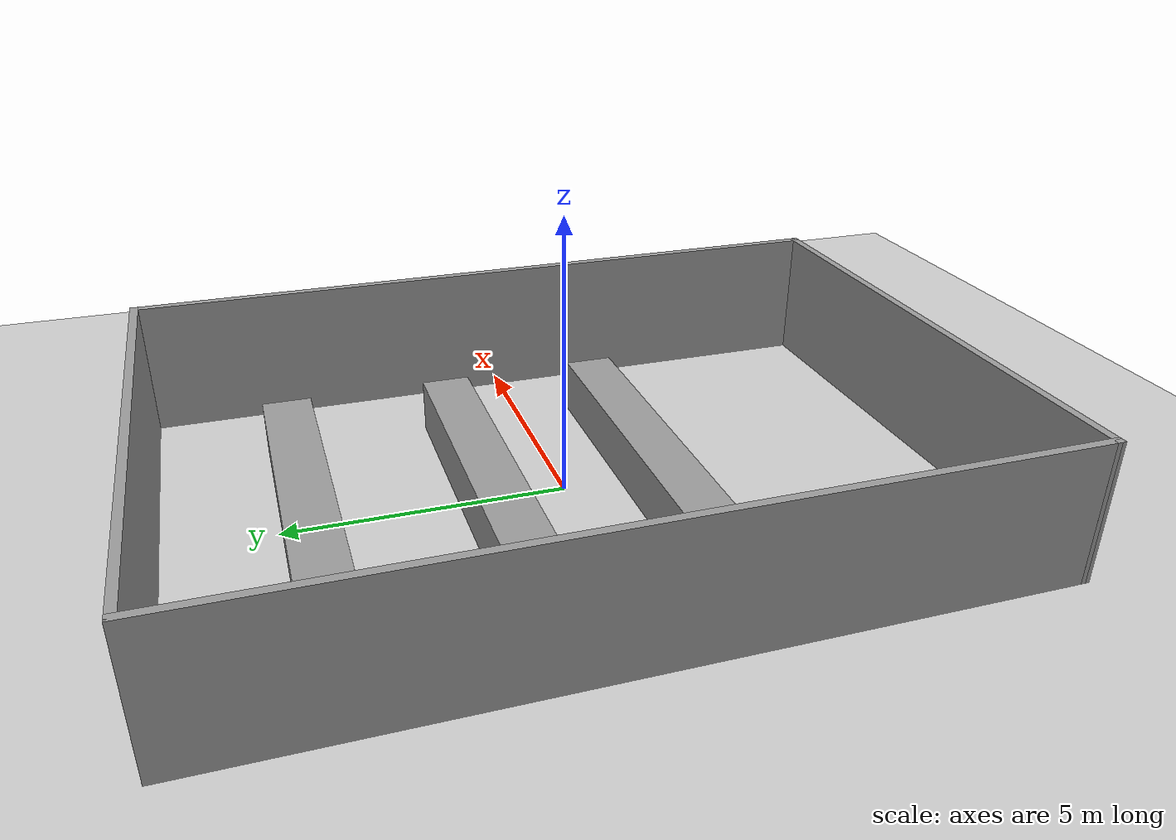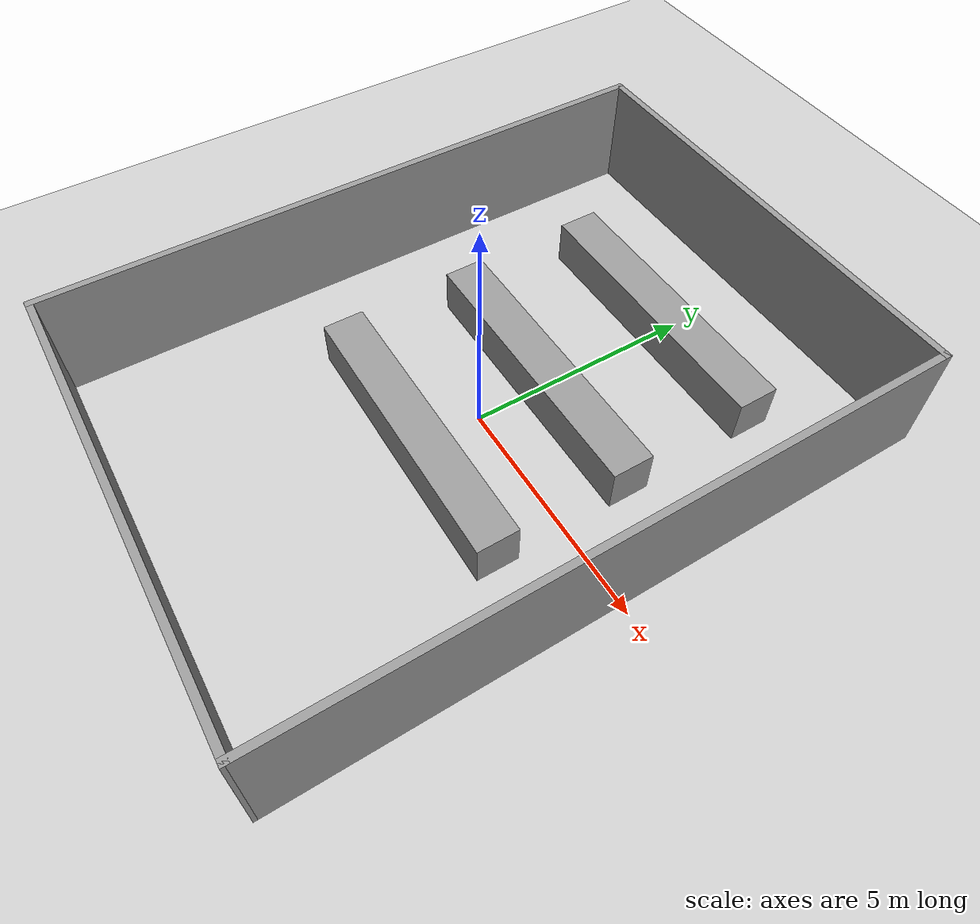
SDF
<sdf version="1.7">
 <world name="turtlebot3_supermarket">
  <light name="sun" type="directional">
   <pose>0 0 10 0 -0 0</pose>
   <diffuse>0.8 0.8 0.8 1</diffuse>
   <specular>0.2 0.2 0.2 1</specular>
   <attenuation>
    <range>1000</range>
    <constant>0.9</constant>
    <linear>0.01</linear>
    <quadratic>0.001</quadratic>
   </attenuation>
   <direction>-0.5 0.1 -0.9</direction>
   <spot><inner_angle>0</inner_angle><outer_angle>0</outer_angle><falloff>0</falloff></spot>
  </light>
  <model name="ground_plane">
   <static>1</static>
   <link name="link">
    <collision name="collision">
     <geometry><plane><normal>0 0 1</normal><size>100 100</size></plane></geometry>
     <surface>
      <contact><collide_bitmask>65535</collide_bitmask></contact>
      <friction><ode><mu>100</mu><mu2>50</mu2></ode></friction>
     </surface>
    </collision>
    <visual name="visual">
     <cast_shadows>0</cast_shadows>
     <geometry><plane><normal>0 0 1</normal><size>100 100</size></plane></geometry>
     <material>
      <script><uri>file://media/materials/scripts/gazebo.material</uri><name>Gazebo/Grey</name></script>
     </material>
    </visual>
   </link>
  </model>
  <gravity>0 0 -9.8</gravity>
  <magnetic_field>6e-06 2.3e-05 -4.2e-05</magnetic_field>
  <atmosphere type="adiabatic"/>
  <physics type="ode">
   <max_step_size>0.001</max_step_size>
   <real_time_factor>1</real_time_factor>
   <real_time_update_rate>1000</real_time_update_rate>
  </physics>
  <scene><ambient>0.4 0.4 0.4 1</ambient><background>0.7 0.7 0.7 1</background><shadows>1</shadows></scene>
  <spherical_coordinates>
   <surface_model>EARTH_WGS84</surface_model>
   <latitude_deg>0</latitude_deg>
   <longitude_deg>0</longitude_deg>
   <elevation>0</elevation>
   <heading_deg>0</heading_deg>
  </spherical_coordinates>
  <model name="Supermarket_Walls">
   <pose>-0.204136 0.058378 0 0 -0 0</pose>
   <link name="Wall_1">
    <collision name="Wall_1_Collision">
     <geometry><box><size>10 0.15 2.5</size></box></geometry>
     <pose>0 0 1.25 0 -0 0</pose>
    </collision>
    <visual name="Wall_1_Visual">
     <pose>0 0 1.25 0 -0 0</pose>
     <geometry><box><size>10 0.15 2.5</size></box></geometry>
     <material>
      <script><uri>file://media/materials/scripts/gazebo.material</uri><name>Gazebo/Grey</name></script>
      <ambient>1 1 1 1</ambient>
     </material>
     <meta><layer>0</layer></meta>
    </visual>
    <pose>-0 -6.91341 0 0 -0 0.002335</pose>
   </link>
   <link name="Wall_23">
    <collision name="Wall_23_Collision">
     <geometry><box><size>14 0.15 2.5</size></box></geometry>
     <pose>0 0 1.25 0 -0 0</pose>
    </collision>
    <visual name="Wall_23_Visual">
     <pose>0 0 1.25 0 -0 0</pose>
     <geometry><box><size>14 0.15 2.5</size></box></geometry>
     <material>
      <script><uri>file://media/materials/scripts/gazebo.material</uri><name>Gazebo/Grey</name></script>
      <ambient>1 1 1 1</ambient>
     </material>
     <meta><layer>0</layer></meta>
    </visual>
    <pose>-4.925 8.7e-05 0 0 -0 1.5708</pose>
   </link>
   <link name="Wall_24">
    <collision name="Wall_24_Collision">
     <geometry><box><size>10 0.15 2.5</size></box></geometry>
     <pose>0 0 1.25 0 -0 0</pose>
    </collision>
    <visual name="Wall_24_Visual">
     <pose>0 0 1.25 0 -0 0</pose>
     <geometry><box><size>10 0.15 2.5</size></box></geometry>
     <material>
      <script><uri>file://media/materials/scripts/gazebo.material</uri><name>Gazebo/Grey</name></script>
      <ambient>1 1 1 1</ambient>
     </material>
     <meta><layer>0</layer></meta>
    </visual>
    <pose>-0 6.92509 0 0 -0 0</pose>
   </link>
   <link name="Wall_25">
    <collision name="Wall_25_Collision">
     <geometry><box><size>13.977 0.15 2.5</size></box></geometry>
     <pose>0 0 1.25 0 -0 0</pose>
    </collision>
    <visual name="Wall_25_Visual">
     <pose>0 0 1.25 0 -0 0</pose>
     <geometry><box><size>13.977 0.15 2.5</size></box></geometry>
     <material>
      <script><uri>file://media/materials/scripts/gazebo.material</uri><name>Gazebo/Grey</name></script>
      <ambient>1 1 1 1</ambient>
     </material>
     <meta><layer>0</layer></meta>
    </visual>
    <pose>4.925 0.011587 0 0 -0 -1.5708</pose>
   </link>
   <static>1</static>
  </model>
  <model name="Shelf">
   <link name="link_0">
    <inertial>
     <mass>5.40963</mass>
     <inertia><ixx>0.803708</ixx><ixy>0</ixy><ixz>0</ixz><iyy>17.303</iyy><iyz>0</iyz><izz>17.2051</izz></inertia>
    </inertial>
    <pose>0 -2e-06 0 0 -0 0</pose>
    <visual name="visual">
     <geometry><box><size>6.11414 0.884781 1</size></box></geometry>
     <material>
      <lighting>1</lighting>
      <script><uri>file://media/materials/scripts/gazebo.material</uri><name>Gazebo/Grey</name></script>
      <shader type="pixel"/>
     </material>
    </visual>
    <collision name="collision">
     <geometry><box><size>6.11414 0.884781 1</size></box></geometry>
     <surface>
      <friction>
       <ode><mu>1</mu><mu2>1</mu2><fdir1>0 0 0</fdir1><slip1>0</slip1><slip2>0</slip2></ode>
       <torsional>
        <coefficient>1</coefficient>
        <patch_radius>0</patch_radius>
        <surface_radius>0</surface_radius>
        <use_patch_radius>1</use_patch_radius>
        <ode><slip>0</slip></ode>
       </torsional>
      </friction>
      <bounce><restitution_coefficient>0</restitution_coefficient><threshold>1e+06</threshold></bounce>
      <contact>
       <collide_without_contact>0</collide_without_contact>
       <collide_without_contact_bitmask>1</collide_without_contact_bitmask>
       <collide_bitmask>1</collide_bitmask>
       <ode>
        <soft_cfm>0</soft_cfm>
        <soft_erp>0.2</soft_erp>
        <kp>1e+13</kp>
        <kd>1</kd>
        <max_vel>0.01</max_vel>
        <min_depth>0</min_depth>
       </ode>
       <bullet>
        <split_impulse>1</split_impulse>
        <split_impulse_penetration_threshold>-0.01</split_impulse_penetration_threshold>
        <soft_cfm>0</soft_cfm>
        <soft_erp>0.2</soft_erp>
        <kp>1e+13</kp>
        <kd>1</kd>
       </bullet>
      </contact>
     </surface>
    </collision>
   </link>
   <static>0</static>
   <pose>-0.038365 4.49649 0.499996 -8e-06 -0 -0</pose>
  </model>
  <model name="Shelf_0">
   <link name="link_0">
    <inertial>
     <mass>5.40963</mass>
     <inertia><ixx>0.803708</ixx><ixy>0</ixy><ixz>0</ixz><iyy>17.303</iyy><iyz>0</iyz><izz>17.2051</izz></inertia>
    </inertial>
    <pose>0 -2e-06 0 0 -0 0</pose>
    <visual name="visual">
     <geometry><box><size>6.11414 0.884781 1</size></box></geometry>
     <material>
      <lighting>1</lighting>
      <script><uri>file://media/materials/scripts/gazebo.material</uri><name>Gazebo/Grey</name></script>
      <shader type="pixel"/>
     </material>
    </visual>
    <collision name="collision">
     <geometry><box><size>6.11414 0.884781 1</size></box></geometry>
     <surface>
      <friction>
       <ode><mu>1</mu><mu2>1</mu2><fdir1>0 0 0</fdir1><slip1>0</slip1><slip2>0</slip2></ode>
       <torsional>
        <coefficient>1</coefficient>
        <patch_radius>0</patch_radius>
        <surface_radius>0</surface_radius>
        <use_patch_radius>1</use_patch_radius>
        <ode><slip>0</slip></ode>
       </torsional>
      </friction>
      <bounce><restitution_coefficient>0</restitution_coefficient><threshold>1e+06</threshold></bounce>
      <contact>
       <collide_without_contact>0</collide_without_contact>
       <collide_without_contact_bitmask>1</collide_without_contact_bitmask>
       <collide_bitmask>1</collide_bitmask>
       <ode>
        <soft_cfm>0</soft_cfm>
        <soft_erp>0.2</soft_erp>
        <kp>1e+13</kp>
        <kd>1</kd>
        <max_vel>0.01</max_vel>
        <min_depth>0</min_depth>
       </ode>
       <bullet>
        <split_impulse>1</split_impulse>
        <split_impulse_penetration_threshold>-0.01</split_impulse_penetration_threshold>
        <soft_cfm>0</soft_cfm>
        <soft_erp>0.2</soft_erp>
        <kp>1e+13</kp>
        <kd>1</kd>
       </bullet>
      </contact>
     </surface>
    </collision>
   </link>
   <static>0</static>
   <pose>-0.014059 1.46789 0.5 0 -0 0</pose>
  </model>
  <model name="Shelf_1">
   <link name="link_0">
    <inertial>
     <mass>5.40963</mass>
     <inertia><ixx>0.803708</ixx><ixy>0</ixy><ixz>0</ixz><iyy>17.303</iyy><iyz>0</iyz><izz>17.2051</izz></inertia>
    </inertial>
    <pose>0 -2e-06 0 0 -0 0</pose>
    <visual name="visual">
     <geometry><box><size>6.11414 0.884781 1</size></box></geometry>
     <material>
      <lighting>1</lighting>
      <script><uri>file://media/materials/scripts/gazebo.material</uri><name>Gazebo/Grey</name></script>
      <shader type="pixel"/>
     </material>
    </visual>
    <collision name="collision">
     <geometry><box><size>6.11414 0.884781 1</size></box></geometry>
     <surface>
      <friction>
       <ode><mu>1</mu><mu2>1</mu2><fdir1>0 0 0</fdir1><slip1>0</slip1><slip2>0</slip2></ode>
       <torsional>
        <coefficient>1</coefficient>
        <patch_radius>0</patch_radius>
        <surface_radius>0</surface_radius>
        <use_patch_radius>1</use_patch_radius>
        <ode><slip>0</slip></ode>
       </torsional>
      </friction>
      <bounce><restitution_coefficient>0</restitution_coefficient><threshold>1e+06</threshold></bounce>
      <contact>
       <collide_without_contact>0</collide_without_contact>
       <collide_without_contact_bitmask>1</collide_without_contact_bitmask>
       <collide_bitmask>1</collide_bitmask>
       <ode>
        <soft_cfm>0</soft_cfm>
        <soft_erp>0.2</soft_erp>
        <kp>1e+13</kp>
        <kd>1</kd>
        <max_vel>0.01</max_vel>
        <min_depth>0</min_depth>
       </ode>
       <bullet>
        <split_impulse>1</split_impulse>
        <split_impulse_penetration_threshold>-0.01</split_impulse_penetration_threshold>
        <soft_cfm>0</soft_cfm>
        <soft_erp>0.2</soft_erp>
        <kp>1e+13</kp>
        <kd>1</kd>
       </bullet>
      </contact>
     </surface>
    </collision>
   </link>
   <static>0</static>
   <pose>0.02525 -1.47801 0.500001 3e-06 -0 0</pose>
  </model>
 </world>
</sdf>
